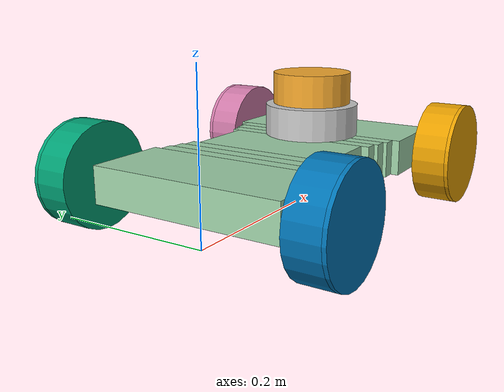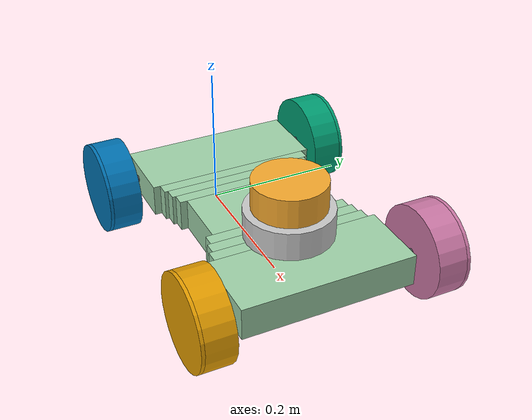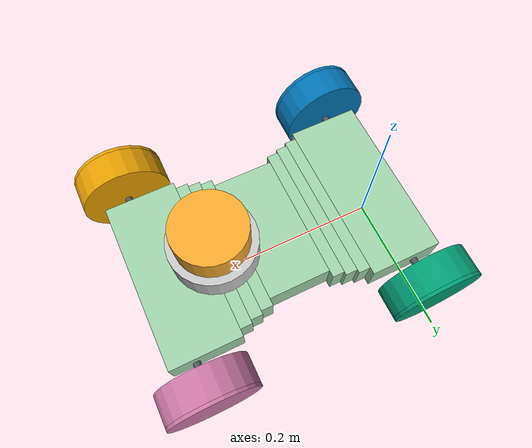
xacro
<?xml version="1.0"?>

<robot xmlns:xacro="http://www.ros.org/wiki/xacro"
       name="agv_simulation">

  <xacro:arg name="vehicle_length" default="0.3865"/>
  <xacro:arg name="vehicle_width" default="0.362"/>
  <xacro:arg name="wheelbase" default="0.3187"/>
  <xacro:arg name="front_track" default="0.3118"/>
  <xacro:arg name="rear_track" default="0.3118"/>
  <xacro:arg name="wheel_radius" default="0.063"/>
  <xacro:arg name="wheel_width" default="0.0408"/>

  <xacro:arg name="wheel_outer_overhang" default="0.0047"/>
  <xacro:arg name="steering_axis_offset" default="0.0369"/>
  <xacro:arg name="front_body_width" default="0.238"/>
  <xacro:arg name="middle_body_width" default="0.180"/>
  <xacro:arg name="rear_body_width" default="0.238"/>
  <xacro:arg name="front_body_length" default="0.100"/>
  <xacro:arg name="middle_body_length" default="0.0865"/>
  <xacro:arg name="rear_body_length" default="0.100"/>
  <xacro:arg name="chamfer_length" default="0.050"/>

  <xacro:arg name="body_height" default="0.0444"/>
  <xacro:arg name="lidar_x_rear_axle" default="0.240"/>
  <xacro:arg name="lidar_height" default="0.146"/>

  <xacro:include filename="materials.xacro"/>
  <xacro:include filename="core_macro.xacro"/>
  <xacro:include filename="laser.xacro"/>

  <xacro:core
    vehicle_length="$(arg vehicle_length)"
    vehicle_width="$(arg vehicle_width)"
    wheelbase="$(arg wheelbase)"
    front_track="$(arg front_track)"
    rear_track="$(arg rear_track)"
    wheel_radius="$(arg wheel_radius)"
    wheel_width="$(arg wheel_width)"
    wheel_outer_overhang="$(arg wheel_outer_overhang)"
    steering_axis_offset="$(arg steering_axis_offset)"
    front_body_width="$(arg front_body_width)"
    middle_body_width="$(arg middle_body_width)"
    rear_body_width="$(arg rear_body_width)"
    front_body_length="$(arg front_body_length)"
    middle_body_length="$(arg middle_body_length)"
    rear_body_length="$(arg rear_body_length)"
    chamfer_length="$(arg chamfer_length)"
    body_height="$(arg body_height)"
    lidar_x_rear_axle="$(arg lidar_x_rear_axle)"/>
  <xacro:laser
    lidar_height="$(arg lidar_height)"
    wheel_radius="$(arg wheel_radius)"/>

</robot>

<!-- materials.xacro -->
<robot xmlns:xacro="http://www.ros.org/wiki/xacro">

  <material name="body_material">
    <color rgba="0.62 0.82 0.66 1.0"/>
  </material>
  <material name="front_wheel_material">
    <color rgba="0.88 0.16 0.16 1.0"/>
  </material>
  <material name="rear_wheel_material">
    <color rgba="0.42 0.66 0.88 1.0"/>
  </material>
  <material name="lidar_material">
    <color rgba="0.96 0.66 0.18 1.0"/>
  </material>
  <material name="sensor_mount_material">
    <color rgba="0.78 0.78 0.78 1.0"/>
  </material>
  <material name="steering_material">
    <color rgba="0.32 0.34 0.36 1.0"/>
  </material>

</robot>

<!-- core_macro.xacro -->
<robot xmlns:xacro="http://www.ros.org/wiki/xacro">

    <xacro:include filename="wheels.xacro" />

    <xacro:macro name="body_section" params="x length width height">
        <visual>
            <origin xyz="${x} 0 0"/>
            <geometry><box size="${length} ${width} ${height}"/></geometry>
            <material name="body_material"/>
        </visual>
        <collision>
            <origin xyz="${x} 0 0"/>
            <geometry><box size="${length} ${width} ${height}"/></geometry>
        </collision>
    </xacro:macro>

    <xacro:macro name="core" params="vehicle_length vehicle_width wheelbase front_track rear_track wheel_radius wheel_width wheel_outer_overhang steering_axis_offset front_body_width middle_body_width rear_body_width front_body_length middle_body_length rear_body_length chamfer_length body_height lidar_x_rear_axle">

        <link name="base_footprint"/>
        <joint name="base_footprint_to_imu_joint" type="fixed">
            <!-- Temporary center-of-chassis placement; adjust after measuring the installed IMU. -->
            <origin xyz="${wheelbase / 2.0} 0.0 ${wheel_radius}" rpy="0.0 0.0 0.0"/>
            <parent link="base_footprint"/>
            <child link="imu_link"/>
        </joint>
        <link name="imu_link"/>

        <joint name="base_footprint_to_base_link_joint" type="fixed">
            <origin xyz="${wheelbase / 2.0} 0 ${wheel_radius}" rpy="0.0 0.0 0.0"/>
            <parent link="base_footprint"/>
            <child link="base_link"/>
        </joint>
        <link name="base_link"/>

        <joint name="base_link_to_rear_axle_joint" type="fixed">
            <origin xyz="${-wheelbase / 2.0} 0.0 0.0" rpy="0.0 0.0 0.0"/>
            <parent link="base_link"/>
            <child link="rear_axle"/>
        </joint>
        <link name="rear_axle" />

        <joint name="chassis_joint" type="fixed">
            <parent link="base_link"/>
            <child link="chassis"/>
            <origin xyz="0.0 0.0 0.0"/>
        </joint>
        <link name="chassis">
            <xacro:body_section x="${-vehicle_length / 2.0 + rear_body_length / 2.0}" length="${rear_body_length}" width="${rear_body_width}" height="${body_height}"/>
            <xacro:body_section x="${-vehicle_length / 2.0 + rear_body_length + chamfer_length / 6.0}" length="${chamfer_length / 3.0}" width="${(rear_body_width * 2.0 + middle_body_width) / 3.0}" height="${body_height}"/>
            <xacro:body_section x="${-vehicle_length / 2.0 + rear_body_length + chamfer_length / 2.0}" length="${chamfer_length / 3.0}" width="${(rear_body_width + middle_body_width) / 2.0}" height="${body_height}"/>
            <xacro:body_section x="${-vehicle_length / 2.0 + rear_body_length + 5.0 * chamfer_length / 6.0}" length="${chamfer_length / 3.0}" width="${(rear_body_width + middle_body_width * 2.0) / 3.0}" height="${body_height}"/>
            <xacro:body_section x="${-vehicle_length / 2.0 + rear_body_length + chamfer_length + middle_body_length / 2.0}" length="${middle_body_length}" width="${middle_body_width}" height="${body_height}"/>
            <xacro:body_section x="${vehicle_length / 2.0 - front_body_length - 5.0 * chamfer_length / 6.0}" length="${chamfer_length / 3.0}" width="${(front_body_width + middle_body_width * 2.0) / 3.0}" height="${body_height}"/>
            <xacro:body_section x="${vehicle_length / 2.0 - front_body_length - chamfer_length / 2.0}" length="${chamfer_length / 3.0}" width="${(front_body_width + middle_body_width) / 2.0}" height="${body_height}"/>
            <xacro:body_section x="${vehicle_length / 2.0 - front_body_length - chamfer_length / 6.0}" length="${chamfer_length / 3.0}" width="${(front_body_width * 2.0 + middle_body_width) / 3.0}" height="${body_height}"/>
            <xacro:body_section x="${vehicle_length / 2.0 - front_body_length / 2.0}" length="${front_body_length}" width="${front_body_width}" height="${body_height}"/>
        </link>
        <xacro:wheel_unit prefix="front_left"  parent="base_link" x_pos="${wheelbase / 2.0}" y_pos="${front_track / 2.0}" z_pos="0.0" side_reflect="1" is_steer="true" wheel_radius="${wheel_radius}" wheel_width="${wheel_width}" wheel_outer_overhang="${wheel_outer_overhang}" steering_axis_offset="${steering_axis_offset}" />
        <xacro:wheel_unit prefix="front_right" parent="base_link" x_pos="${wheelbase / 2.0}" y_pos="${-front_track / 2.0}" z_pos="0.0" side_reflect="-1" is_steer="true" wheel_radius="${wheel_radius}" wheel_width="${wheel_width}" wheel_outer_overhang="${wheel_outer_overhang}" steering_axis_offset="${steering_axis_offset}" />

        <xacro:wheel_unit prefix="rear_left"   parent="rear_axle" x_pos="0.0" y_pos="${rear_track / 2.0}" z_pos="0.0" side_reflect="1" is_steer="false" wheel_radius="${wheel_radius}" wheel_width="${wheel_width}" wheel_outer_overhang="${wheel_outer_overhang}" steering_axis_offset="${steering_axis_offset}" />
        <xacro:wheel_unit prefix="rear_right"  parent="rear_axle" x_pos="0.0" y_pos="${-rear_track / 2.0}" z_pos="0.0" side_reflect="-1" is_steer="false" wheel_radius="${wheel_radius}" wheel_width="${wheel_width}" wheel_outer_overhang="${wheel_outer_overhang}" steering_axis_offset="${steering_axis_offset}" />

        <joint name="base_laser_joint" type="fixed">
            <origin xyz="${lidar_x_rear_axle - wheelbase / 2.0} 0.0 0.0" rpy="0.0 0.0 0.0"/>
            <parent link="chassis"/>
            <child link="base_laser"/>
        </joint>
        <link name="base_laser">
            <visual name="">
                <origin xyz="0. 0.0 0.0276"/>
                <geometry>
                    <cylinder radius="0.06" length="0.0684"/>
                </geometry>
                <material name="sensor_mount_material"/>
            </visual>
            <collision>
                <origin xyz="0.0 0.0 0.0276"/>
                <geometry>
                    <cylinder radius="0.06" length="0.0684"/>
                </geometry>
            </collision>
        </link>
    </xacro:macro>

</robot>

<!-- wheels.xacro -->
<robot xmlns:xacro="http://www.ros.org/wiki/xacro">

    <xacro:macro name="wheel_unit" params="prefix parent x_pos y_pos z_pos side_reflect is_steer wheel_radius wheel_width wheel_outer_overhang steering_axis_offset">

        <joint name="${prefix}_steer_joint" type="${'revolute' if is_steer else 'fixed'}">
            <parent link="${parent}"/>
            <child link="${prefix}_steer_link"/>
            <origin xyz="${x_pos} ${y_pos - side_reflect * steering_axis_offset} ${z_pos}" rpy="0.0 0.0 0.0"/>
            <xacro:if value="${is_steer}">
                <axis xyz="0.0 0.0 1"/>
                <limit lower="-0.261799" upper="0.261799" effort="0.1" velocity="1.0"/>
                <dynamics damping="0.05" friction="0.02"/>
            </xacro:if>
        </joint>

        <link name="${prefix}_steer_link">
            <visual>
                <origin xyz="0.0 0.0 0.0" rpy="${-side_reflect * pi/2} 0.0 0.0"/>
                <geometry>
                    <cylinder radius="0.005" length="0.0369"/>
                </geometry>
                <material name="steering_material"/>
            </visual>
            <collision>
                <origin xyz="0.0 0.0 0.0" rpy="${-side_reflect * pi/2} 0.0 0.0"/>
                <geometry>
                    <cylinder radius="0.005" length="0.0369"/>
                </geometry>
            </collision>
        </link>

        <joint name="${prefix}_wheel_joint" type="continuous">
            <origin xyz="0.0 ${side_reflect * steering_axis_offset} 0.0" rpy="-${pi/2} 0.0 0.0"/>
            <parent link="${prefix}_steer_link"/>
            <child link="${prefix}_wheel"/>
            <axis xyz="0.0 0.0 1"/>
            <dynamics damping="0.01" friction="0.005"/>
        </joint>

        <link name="${prefix}_wheel">
            <visual>
                <origin xyz="0.0 0.0 0.0" rpy="0.0 0.0 0.0"/>
                <geometry>
                    <cylinder radius="${wheel_radius}" length="${wheel_width}"/>
                </geometry>
                <material name="${'front_wheel_material' if prefix.startswith('front') else 'rear_wheel_material'}"/>
            </visual>
            <!-- Estimated outer bevel band: 4.7 mm per side matches the
                 measured total width while keeping the 40.8 mm tire body. -->
            <visual>
                <origin xyz="0.0 0.0 ${side_reflect * (wheel_width / 2.0 + wheel_outer_overhang / 2.0)}"/>
                <geometry><cylinder radius="${wheel_radius}" length="${wheel_outer_overhang}"/></geometry>
                <material name="${'front_wheel_material' if prefix.startswith('front') else 'rear_wheel_material'}"/>
            </visual>
            <collision>
                <origin xyz="0.0 0.0 0.0" rpy="0.0 0.0 0.0"/>
                <geometry>
                    <cylinder radius="${wheel_radius}" length="${wheel_width}"/>
                </geometry>
            </collision>
            <collision>
                <origin xyz="0.0 0.0 ${side_reflect * (wheel_width / 2.0 + wheel_outer_overhang / 2.0)}"/>
                <geometry><cylinder radius="${wheel_radius}" length="${wheel_outer_overhang}"/></geometry>
            </collision>
        </link>
    </xacro:macro>

</robot>

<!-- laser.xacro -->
<robot xmlns:xacro="http://www.ros.org/wiki/xacro">

  <xacro:macro name="laser" params="lidar_height wheel_radius">

    <joint name="laser_joint" type="fixed">
      <parent link="base_laser"/>
      <child link="laser_frame"/>
      <!-- Convert rear-axle/ground measurements to base_link coordinates. -->
      <origin xyz="0.0 0.0 ${lidar_height - wheel_radius}" rpy="0 0 0"/>
    </joint>

    <link name="laser_frame">
      <visual>
        <geometry>
          <cylinder radius="0.05" length="0.04"/>
        </geometry>
        <material name="lidar_material"/>
      </visual>
      <collision>
        <geometry>
          <cylinder radius="0.05" length="0.04"/>
        </geometry>
      </collision>
    </link>

  </xacro:macro>

</robot>
